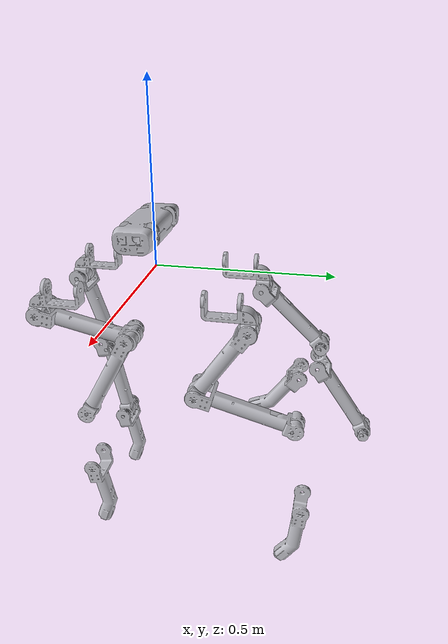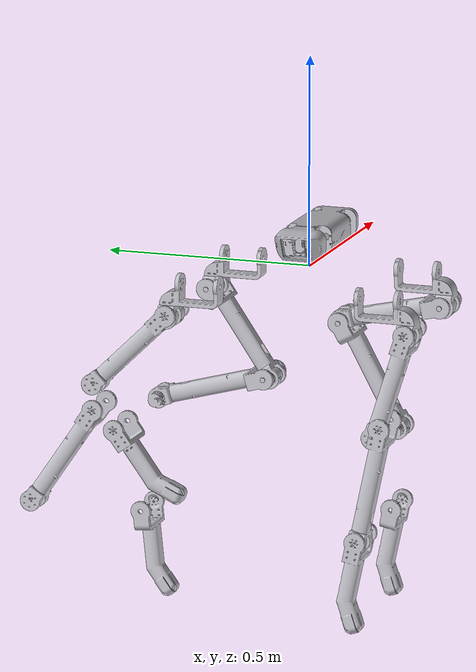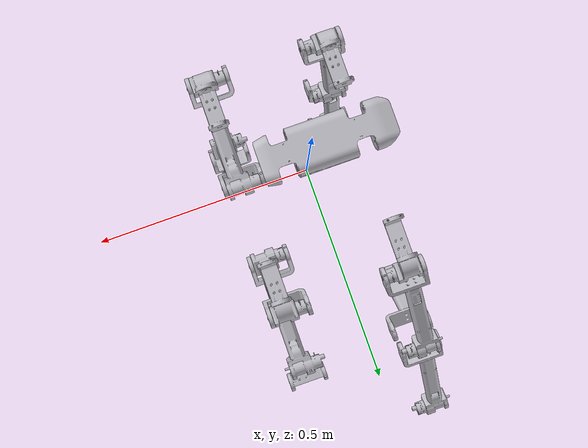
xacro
<?xml version="1.0" ?>
<robot name="quadruped" xmlns:xacro="http://www.ros.org/wiki/xacro">

<xacro:include filename="$(find quadruped_description)/urdf/materials.xacro" />
<xacro:include filename="$(find quadruped_description)/urdf/quadruped.trans" />
<xacro:include filename="$(find quadruped_description)/urdf/quadruped.gazebo" />
<link name="base_link">
  <inertial>
    <origin rpy="0 0 0" xyz="-3.431576713324414e-17 2.610567498014317e-16 0.04324730691236673"/>
    <mass value="29.384744866709624"/>
    <inertia ixx="1.089951" ixy="-1.1e-05" ixz="0.0" iyy="0.445316" iyz="0.0" izz="1.461435"/>
  </inertial>
  <visual>
    <origin rpy="0 0 0" xyz="0 0 0"/>
    <geometry>
      <mesh filename="package://quadruped_description/meshes/base_link.stl" scale="0.001 0.001 0.001"/>
    </geometry>
    <material name="silver_default"/>
  </visual>
  <collision>
    <origin rpy="0 0 0" xyz="0 0 0"/>
    <geometry>
      <mesh filename="package://quadruped_description/meshes/base_link.stl" scale="0.001 0.001 0.001"/>
    </geometry>
  </collision>
</link>

<link name="link1FrontRight_1">
  <inertial>
    <origin rpy="0 0 0" xyz="0.006657525670384218 -0.008851869868314433 -0.0682785415205543"/>
    <mass value="0.6959462012084651"/>
    <inertia ixx="0.001039" ixy="4.5e-05" ixz="5.5e-05" iyy="0.000651" iyz="-0.000304" izz="0.000853"/>
  </inertial>
  <visual>
    <origin rpy="0 0 0" xyz="0.155 0.272 0.028"/>
    <geometry>
      <mesh filename="package://quadruped_description/meshes/link1FrontRight_1.stl" scale="0.001 0.001 0.001"/>
    </geometry>
    <material name="silver_default"/>
  </visual>
  <collision>
    <origin rpy="0 0 0" xyz="0.155 0.272 0.028"/>
    <geometry>
      <mesh filename="package://quadruped_description/meshes/link1FrontRight_1.stl" scale="0.001 0.001 0.001"/>
    </geometry>
  </collision>
</link>

<link name="link1BackLeft_1">
  <inertial>
    <origin rpy="0 0 0" xyz="-0.006657525670384523 0.008851869868314655 -0.068278541520555"/>
    <mass value="0.6959462012084651"/>
    <inertia ixx="0.001039" ixy="4.5e-05" ixz="-5.5e-05" iyy="0.000651" iyz="0.000304" izz="0.000853"/>
  </inertial>
  <visual>
    <origin rpy="0 0 0" xyz="-0.155 -0.272 0.028"/>
    <geometry>
      <mesh filename="package://quadruped_description/meshes/link1BackLeft_1.stl" scale="0.001 0.001 0.001"/>
    </geometry>
    <material name="silver_default"/>
  </visual>
  <collision>
    <origin rpy="0 0 0" xyz="-0.155 -0.272 0.028"/>
    <geometry>
      <mesh filename="package://quadruped_description/meshes/link1BackLeft_1.stl" scale="0.001 0.001 0.001"/>
    </geometry>
  </collision>
</link>

<link name="link1FrontLeft_1">
  <inertial>
    <origin rpy="0 0 0" xyz="-0.006632742807460124 -0.008892294774752285 -0.06827854152055422"/>
    <mass value="0.6959462012084651"/>
    <inertia ixx="0.00104" ixy="-4.6e-05" ixz="-5.5e-05" iyy="0.000651" iyz="-0.000304" izz="0.000853"/>
  </inertial>
  <visual>
    <origin rpy="0 0 0" xyz="-0.155 0.272 0.028"/>
    <geometry>
      <mesh filename="package://quadruped_description/meshes/link1FrontLeft_1.stl" scale="0.001 0.001 0.001"/>
    </geometry>
    <material name="silver_default"/>
  </visual>
  <collision>
    <origin rpy="0 0 0" xyz="-0.155 0.272 0.028"/>
    <geometry>
      <mesh filename="package://quadruped_description/meshes/link1FrontLeft_1.stl" scale="0.001 0.001 0.001"/>
    </geometry>
  </collision>
</link>

<link name="link1BackRight_1">
  <inertial>
    <origin rpy="0 0 0" xyz="0.006632742807465342 0.008892294774752674 -0.06827854152054838"/>
    <mass value="0.6959462012084651"/>
    <inertia ixx="0.00104" ixy="-4.6e-05" ixz="5.5e-05" iyy="0.000651" iyz="0.000304" izz="0.000853"/>
  </inertial>
  <visual>
    <origin rpy="0 0 0" xyz="0.155 -0.272 0.028"/>
    <geometry>
      <mesh filename="package://quadruped_description/meshes/link1BackRight_1.stl" scale="0.001 0.001 0.001"/>
    </geometry>
    <material name="silver_default"/>
  </visual>
  <collision>
    <origin rpy="0 0 0" xyz="0.155 -0.272 0.028"/>
    <geometry>
      <mesh filename="package://quadruped_description/meshes/link1BackRight_1.stl" scale="0.001 0.001 0.001"/>
    </geometry>
  </collision>
</link>

<link name="link2FrontRight_1">
  <inertial>
    <origin rpy="0 0 0" xyz="0.04835689837404797 0.1778581520813298 -0.1026823777545005"/>
    <mass value="0.8659841478355499"/>
    <inertia ixx="0.00672" ixy="-9.7e-05" ixz="5.5e-05" iyy="0.002139" iyz="0.002835" izz="0.005389"/>
  </inertial>
  <visual>
    <origin rpy="0 0 0" xyz="0.196988 0.2908 0.100978"/>
    <geometry>
      <mesh filename="package://quadruped_description/meshes/link2FrontRight_1.stl" scale="0.001 0.001 0.001"/>
    </geometry>
    <material name="silver_default"/>
  </visual>
  <collision>
    <origin rpy="0 0 0" xyz="0.196988 0.2908 0.100978"/>
    <geometry>
      <mesh filename="package://quadruped_description/meshes/link2FrontRight_1.stl" scale="0.001 0.001 0.001"/>
    </geometry>
  </collision>
</link>

<link name="link2BackLeft_1">
  <inertial>
    <origin rpy="0 0 0" xyz="-0.04835689837407095 -0.20225131512422015 -0.035658823063442355"/>
    <mass value="0.8659841478355499"/>
    <inertia ixx="0.00672" ixy="-0.00011" ixz="-1.9e-05" iyy="0.000697" iyz="-0.001127" izz="0.006832"/>
  </inertial>
  <visual>
    <origin rpy="0 0 0" xyz="-0.196988 -0.2908 0.100978"/>
    <geometry>
      <mesh filename="package://quadruped_description/meshes/link2BackLeft_1.stl" scale="0.001 0.001 0.001"/>
    </geometry>
    <material name="silver_default"/>
  </visual>
  <collision>
    <origin rpy="0 0 0" xyz="-0.196988 -0.2908 0.100978"/>
    <geometry>
      <mesh filename="package://quadruped_description/meshes/link2BackLeft_1.stl" scale="0.001 0.001 0.001"/>
    </geometry>
  </collision>
</link>

<link name="link2FrontLeft_1">
  <inertial>
    <origin rpy="0 0 0" xyz="-0.048355899630154325 0.17785432113816846 -0.10268901314269395"/>
    <mass value="0.8659841478355499"/>
    <inertia ixx="0.00672" ixy="9.7e-05" ixz="-5.6e-05" iyy="0.00214" iyz="0.002836" izz="0.005388"/>
  </inertial>
  <visual>
    <origin rpy="0 0 0" xyz="-0.197012 0.2908 0.100978"/>
    <geometry>
      <mesh filename="package://quadruped_description/meshes/link2FrontLeft_1.stl" scale="0.001 0.001 0.001"/>
    </geometry>
    <material name="silver_default"/>
  </visual>
  <collision>
    <origin rpy="0 0 0" xyz="-0.197012 0.2908 0.100978"/>
    <geometry>
      <mesh filename="package://quadruped_description/meshes/link2FrontLeft_1.stl" scale="0.001 0.001 0.001"/>
    </geometry>
  </collision>
</link>

<link name="link2BackRight_1">
  <inertial>
    <origin rpy="0 0 0" xyz="0.04835589963013057 -0.20224998465162836 -0.03566636854848647"/>
    <mass value="0.8659841478355499"/>
    <inertia ixx="0.00672" ixy="0.00011" ixz="2e-05" iyy="0.000697" iyz="-0.001129" izz="0.006831"/>
  </inertial>
  <visual>
    <origin rpy="0 0 0" xyz="0.197012 -0.2908 0.100978"/>
    <geometry>
      <mesh filename="package://quadruped_description/meshes/link2BackRight_1.stl" scale="0.001 0.001 0.001"/>
    </geometry>
    <material name="silver_default"/>
  </visual>
  <collision>
    <origin rpy="0 0 0" xyz="0.197012 -0.2908 0.100978"/>
    <geometry>
      <mesh filename="package://quadruped_description/meshes/link2BackRight_1.stl" scale="0.001 0.001 0.001"/>
    </geometry>
  </collision>
</link>

<link name="link3FrontRight_1">
  <inertial>
    <origin rpy="0 0 0" xyz="0.04813339309281217 -0.14425715774798153 -0.1719240538952389"/>
    <mass value="0.8975642770404472"/>
    <inertia ixx="0.00868" ixy="8.8e-05" ixz="0.000106" iyy="0.005501" iyz="-0.004176" izz="0.003999"/>
  </inertial>
  <visual>
    <origin rpy="0 0 0" xyz="0.196988 0.068949 0.229078"/>
    <geometry>
      <mesh filename="package://quadruped_description/meshes/link3FrontRight_1.stl" scale="0.001 0.001 0.001"/>
    </geometry>
    <material name="silver_default"/>
  </visual>
  <collision>
    <origin rpy="0 0 0" xyz="0.196988 0.068949 0.229078"/>
    <geometry>
      <mesh filename="package://quadruped_description/meshes/link3FrontRight_1.stl" scale="0.001 0.001 0.001"/>
    </geometry>
  </collision>
</link>

<link name="link3BackLeft__1">
  <inertial>
    <origin rpy="0 0 0" xyz="-0.04813239309292175 0.1442566121913428 -0.17192326751708192"/>
    <mass value="0.8975642770404472"/>
    <inertia ixx="0.00868" ixy="8.8e-05" ixz="-0.000106" iyy="0.005501" iyz="0.004176" izz="0.003999"/>
  </inertial>
  <visual>
    <origin rpy="0 0 0" xyz="-0.196987 -0.038516 0.145476"/>
    <geometry>
      <mesh filename="package://quadruped_description/meshes/link3BackLeft__1.stl" scale="0.001 0.001 0.001"/>
    </geometry>
    <material name="silver_default"/>
  </visual>
  <collision>
    <origin rpy="0 0 0" xyz="-0.196987 -0.038516 0.145476"/>
    <geometry>
      <mesh filename="package://quadruped_description/meshes/link3BackLeft__1.stl" scale="0.001 0.001 0.001"/>
    </geometry>
  </collision>
</link>

<link name="link3FrontLeft_1">
  <inertial>
    <origin rpy="0 0 0" xyz="-0.04813211460165709 -0.14426164676732856 -0.1719192169758414"/>
    <mass value="0.8975642770404472"/>
    <inertia ixx="0.00868" ixy="-8.9e-05" ixz="-0.000105" iyy="0.005499" iyz="-0.004177" izz="0.004"/>
  </inertial>
  <visual>
    <origin rpy="0 0 0" xyz="-0.197012 0.068937 0.229057"/>
    <geometry>
      <mesh filename="package://quadruped_description/meshes/link3FrontLeft_1.stl" scale="0.001 0.001 0.001"/>
    </geometry>
    <material name="silver_default"/>
  </visual>
  <collision>
    <origin rpy="0 0 0" xyz="-0.197012 0.068937 0.229057"/>
    <geometry>
      <mesh filename="package://quadruped_description/meshes/link3FrontLeft_1.stl" scale="0.001 0.001 0.001"/>
    </geometry>
  </collision>
</link>

<link name="link3BackRight_1">
  <inertial>
    <origin rpy="0 0 0" xyz="0.04813311460159092 0.14426226000625303 -0.1719194610389605"/>
    <mass value="0.8975642770404472"/>
    <inertia ixx="0.00868" ixy="-8.9e-05" ixz="0.000105" iyy="0.005499" iyz="0.004177" izz="0.004"/>
  </inertial>
  <visual>
    <origin rpy="0 0 0" xyz="0.197013 -0.038511 0.145451"/>
    <geometry>
      <mesh filename="package://quadruped_description/meshes/link3BackRight_1.stl" scale="0.001 0.001 0.001"/>
    </geometry>
    <material name="silver_default"/>
  </visual>
  <collision>
    <origin rpy="0 0 0" xyz="0.197013 -0.038511 0.145451"/>
    <geometry>
      <mesh filename="package://quadruped_description/meshes/link3BackRight_1.stl" scale="0.001 0.001 0.001"/>
    </geometry>
  </collision>
</link>

<link name="link4FrontRight_1">
  <inertial>
    <origin rpy="0 0 0" xyz="0.04421036643333587 -0.0949469816012059 -0.054201739043747255"/>
    <mass value="0.3651188269789837"/>
    <inertia ixx="0.001791" ixy="-6.3e-05" ixz="-3.4e-05" iyy="0.000581" iyz="-0.000658" izz="0.001602"/>
  </inertial>
  <visual>
    <origin rpy="0 0 0" xyz="0.196988 0.251779 0.446947"/>
    <geometry>
      <mesh filename="package://quadruped_description/meshes/link4FrontRight_1.stl" scale="0.001 0.001 0.001"/>
    </geometry>
    <material name="silver_default"/>
  </visual>
  <collision>
    <origin rpy="0 0 0" xyz="0.196988 0.251779 0.446947"/>
    <geometry>
      <mesh filename="package://quadruped_description/meshes/link4FrontRight_1.stl" scale="0.001 0.001 0.001"/>
    </geometry>
  </collision>
</link>

<link name="link4BackLeft_1">
  <inertial>
    <origin rpy="0 0 0" xyz="-0.04440935130285234 -0.05996987904558257 -0.09141047421903997"/>
    <mass value="0.3651188269789837"/>
    <inertia ixx="0.001791" ixy="4.1e-05" ixz="5.9e-05" iyy="0.001323" iyz="-0.0008" izz="0.00086"/>
  </inertial>
  <visual>
    <origin rpy="0 0 0" xyz="-0.196987 -0.221346 0.363345"/>
    <geometry>
      <mesh filename="package://quadruped_description/meshes/link4BackLeft_1.stl" scale="0.001 0.001 0.001"/>
    </geometry>
    <material name="silver_default"/>
  </visual>
  <collision>
    <origin rpy="0 0 0" xyz="-0.196987 -0.221346 0.363345"/>
    <geometry>
      <mesh filename="package://quadruped_description/meshes/link4BackLeft_1.stl" scale="0.001 0.001 0.001"/>
    </geometry>
  </collision>
</link>

<link name="link4FrontLeft_1">
  <inertial>
    <origin rpy="0 0 0" xyz="-0.04440935130271231 -0.0949329399299435 -0.054221777753314326"/>
    <mass value="0.3651188269789837"/>
    <inertia ixx="0.001791" ixy="6.3e-05" ixz="3.4e-05" iyy="0.000581" iyz="-0.000658" izz="0.001602"/>
  </inertial>
  <visual>
    <origin rpy="0 0 0" xyz="-0.197012 0.251748 0.446942"/>
    <geometry>
      <mesh filename="package://quadruped_description/meshes/link4FrontLeft_1.stl" scale="0.001 0.001 0.001"/>
    </geometry>
    <material name="silver_default"/>
  </visual>
  <collision>
    <origin rpy="0 0 0" xyz="-0.197012 0.251748 0.446942"/>
    <geometry>
      <mesh filename="package://quadruped_description/meshes/link4FrontLeft_1.stl" scale="0.001 0.001 0.001"/>
    </geometry>
  </collision>
</link>

<link name="link4FrontRight__1__1">
  <inertial>
    <origin rpy="0 0 0" xyz="0.04440936643334964 -0.05999066356480873 -0.09139863065595971"/>
    <mass value="0.3651188269789837"/>
    <inertia ixx="0.001791" ixy="-4e-05" ixz="-5.9e-05" iyy="0.001323" iyz="-0.0008" izz="0.00086"/>
  </inertial>
  <visual>
    <origin rpy="0 0 0" xyz="0.197012 -0.221322 0.363336"/>
    <geometry>
      <mesh filename="package://quadruped_description/meshes/link4FrontRight__1__1.stl" scale="0.001 0.001 0.001"/>
    </geometry>
    <material name="silver_default"/>
  </visual>
  <collision>
    <origin rpy="0 0 0" xyz="0.197012 -0.221322 0.363336"/>
    <geometry>
      <mesh filename="package://quadruped_description/meshes/link4FrontRight__1__1.stl" scale="0.001 0.001 0.001"/>
    </geometry>
  </collision>
</link>

<joint name="joint1FrontRight" type="continuous">
  <origin rpy="0 0 0" xyz="-0.155 -0.272 -0.028"/>
  <parent link="base_link"/>
  <child link="link1FrontRight_1"/>
  <axis xyz="0.0 -1.0 0.0"/>
</joint>

<joint name="joint1BackLeft" type="continuous">
  <origin rpy="0 0 0" xyz="0.155 0.272 -0.028"/>
  <parent link="base_link"/>
  <child link="link1BackLeft_1"/>
  <axis xyz="-0.0 1.0 -0.0"/>
</joint>

<joint name="joint1FrontLeft" type="continuous">
  <origin rpy="0 0 0" xyz="0.155 -0.272 -0.028"/>
  <parent link="base_link"/>
  <child link="link1FrontLeft_1"/>
  <axis xyz="-0.0 -1.0 -0.0"/>
</joint>

<joint name="joint1BackRight" type="continuous">
  <origin rpy="0 0 0" xyz="-0.155 0.272 -0.028"/>
  <parent link="base_link"/>
  <child link="link1BackRight_1"/>
  <axis xyz="-0.0 1.0 0.0"/>
</joint>

<joint name="joint2FrontRight" type="continuous">
  <origin rpy="0.3 0 0" xyz="-0.041988 -0.0188 -0.072978"/>
  <parent link="link1FrontRight_1"/>
  <child link="link2FrontRight_1"/>
  <axis xyz="-1.0 -0.0 0.0"/>
</joint>

<joint name="joint2BackLeft" type="continuous">
  <origin rpy="0.8 0 0" xyz="0.041988 0.0188 -0.072978"/>
  <parent link="link1BackLeft_1"/>
  <child link="link2BackLeft_1"/>
  <axis xyz="1.0 0.0 -0.0"/>
</joint>

<joint name="joint2FrontLeft" type="continuous">
  <origin rpy="0.3 0 0" xyz="0.042012 -0.0188 -0.072978"/>
  <parent link="link1FrontLeft_1"/>
  <child link="link2FrontLeft_1"/>
  <axis xyz="1.0 -0.0 -0.0"/>
</joint>

<joint name="joint2BackRight" type="continuous">
  <origin rpy="0.8 0 0" xyz="-0.042012 0.0188 -0.072978"/>
  <parent link="link1BackRight_1"/>
  <child link="link2BackRight_1"/>
  <axis xyz="-1.0 0.0 -0.0"/>
</joint>

<joint name="joint3FrontRight" type="continuous">
  <origin rpy="-0.1 0 0" xyz="0.0 0.221851 -0.1281"/>
  <parent link="link2FrontRight_1"/>
  <child link="link3FrontRight_1"/>
  <axis xyz="-1.0 0.0 0.0"/>
</joint>

<joint name="joint3BackLeft" type="continuous">
  <origin rpy="-0.2 0 0" xyz="-1e-06 -0.252284 -0.044498"/>
  <parent link="link2BackLeft_1"/>
  <child link="link3BackLeft__1"/>
  <axis xyz="1.0 -0.0 -0.0"/>
</joint>

<joint name="joint3FrontLeft" type="continuous">
  <origin rpy="-0.1 0 0" xyz="0.0 0.221863 -0.128079"/>
  <parent link="link2FrontLeft_1"/>
  <child link="link3FrontLeft_1"/>
  <axis xyz="1.0 0.0 -0.0"/>
</joint>

<joint name="joint3BackRight" type="continuous">
  <origin rpy="-0.2 0 0" xyz="-1e-06 -0.252289 -0.044473"/>
  <parent link="link2BackRight_1"/>
  <child link="link3BackRight_1"/>
  <axis xyz="-1.0 0.0 -0.0"/>
</joint>

<joint name="joint4FrontRight" type="continuous">
  <origin rpy="0 0 0" xyz="0.0 -0.18283 -0.217869"/>
  <parent link="link3FrontRight_1"/>
  <child link="link4FrontRight_1"/>
  <axis xyz="-1.0 0.0 0.0"/>
</joint>

<joint name="joint4BackLeft" type="continuous">
  <origin rpy="-0.7 0 0" xyz="0.0 0.18283 -0.217869"/>
  <parent link="link3BackLeft__1"/>
  <child link="link4BackLeft_1"/>
  <axis xyz="1.0 0.0 -0.0"/>
</joint>

<joint name="joint4FrontLeft" type="continuous">
  <origin rpy="0 0 0" xyz="0.0 -0.182811 -0.217885"/>
  <parent link="link3FrontLeft_1"/>
  <child link="link4FrontLeft_1"/>
  <axis xyz="1.0 -0.0 -0.0"/>
</joint>

<joint name="joint4BackRight" type="continuous">
  <origin rpy="-0.7 0 0" xyz="1e-06 0.182811 -0.217885"/>
  <parent link="link3BackRight_1"/>
  <child link="link4FrontRight__1__1"/>
  <axis xyz="-1.0 0.0 -0.0"/>
</joint>

</robot>

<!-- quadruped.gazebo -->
<robot name="quadruped" xmlns:xacro="http://www.ros.org/wiki/xacro" >

<xacro:property name="body_color" value="Gazebo/Silver" />

<gazebo>
  <plugin filename="libgazebo_ros_control.so" name="control"/>
</gazebo>
<gazebo reference="base_link">
  <material>${body_color}</material>
  <mu1>0.2</mu1>
  <mu2>0.2</mu2>
  <selfCollide>true</selfCollide>
  <gravity>true</gravity>
</gazebo>

<gazebo reference="link1FrontRight_1">
  <material>${body_color}</material>
  <mu1>0.2</mu1>
  <mu2>0.2</mu2>
  <selfCollide>true</selfCollide>
</gazebo>

<gazebo reference="link1BackLeft_1">
  <material>${body_color}</material>
  <mu1>0.2</mu1>
  <mu2>0.2</mu2>
  <selfCollide>true</selfCollide>
</gazebo>

<gazebo reference="link1FrontLeft_1">
  <material>${body_color}</material>
  <mu1>0.2</mu1>
  <mu2>0.2</mu2>
  <selfCollide>true</selfCollide>
</gazebo>

<gazebo reference="link1BackRight_1">
  <material>${body_color}</material>
  <mu1>0.2</mu1>
  <mu2>0.2</mu2>
  <selfCollide>true</selfCollide>
</gazebo>

<gazebo reference="link2FrontRight_1">
  <material>${body_color}</material>
  <mu1>0.2</mu1>
  <mu2>0.2</mu2>
  <selfCollide>true</selfCollide>
</gazebo>

<gazebo reference="link2BackLeft_1">
  <material>${body_color}</material>
  <mu1>0.2</mu1>
  <mu2>0.2</mu2>
  <selfCollide>true</selfCollide>
</gazebo>

<gazebo reference="link2FrontLeft_1">
  <material>${body_color}</material>
  <mu1>0.2</mu1>
  <mu2>0.2</mu2>
  <selfCollide>true</selfCollide>
</gazebo>

<gazebo reference="link2BackRight_1">
  <material>${body_color}</material>
  <mu1>0.2</mu1>
  <mu2>0.2</mu2>
  <selfCollide>true</selfCollide>
</gazebo>

<gazebo reference="link3FrontRight_1">
  <material>${body_color}</material>
  <mu1>0.2</mu1>
  <mu2>0.2</mu2>
  <selfCollide>true</selfCollide>
</gazebo>

<gazebo reference="link3BackLeft__1">
  <material>${body_color}</material>
  <mu1>0.2</mu1>
  <mu2>0.2</mu2>
  <selfCollide>true</selfCollide>
</gazebo>

<gazebo reference="link3FrontLeft_1">
  <material>${body_color}</material>
  <mu1>0.2</mu1>
  <mu2>0.2</mu2>
  <selfCollide>true</selfCollide>
</gazebo>

<gazebo reference="link3BackRight_1">
  <material>${body_color}</material>
  <mu1>0.2</mu1>
  <mu2>0.2</mu2>
  <selfCollide>true</selfCollide>
</gazebo>

<gazebo reference="link4FrontRight_1">
  <material>${body_color}</material>
  <mu1>0.2</mu1>
  <mu2>0.2</mu2>
  <selfCollide>true</selfCollide>
</gazebo>

<gazebo reference="link4BackLeft_1">
  <material>${body_color}</material>
  <mu1>0.2</mu1>
  <mu2>0.2</mu2>
  <selfCollide>true</selfCollide>
</gazebo>

<gazebo reference="link4FrontLeft_1">
  <material>${body_color}</material>
  <mu1>0.2</mu1>
  <mu2>0.2</mu2>
  <selfCollide>true</selfCollide>
</gazebo>

<gazebo reference="link4FrontRight__1__1">
  <material>${body_color}</material>
  <mu1>0.2</mu1>
  <mu2>0.2</mu2>
  <selfCollide>true</selfCollide>
</gazebo>

</robot>
